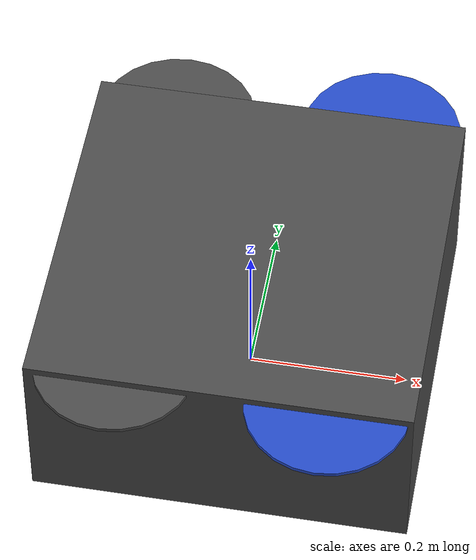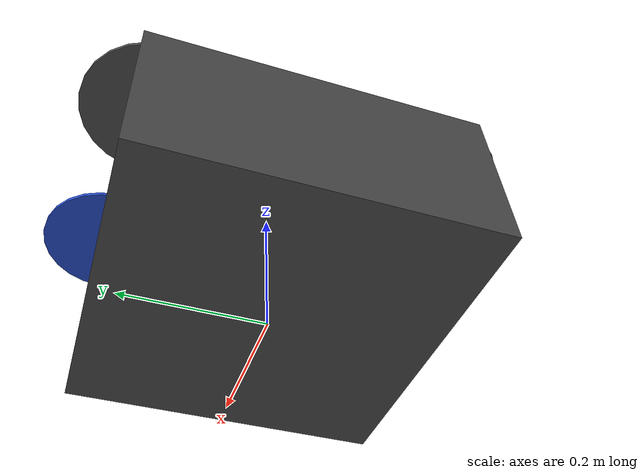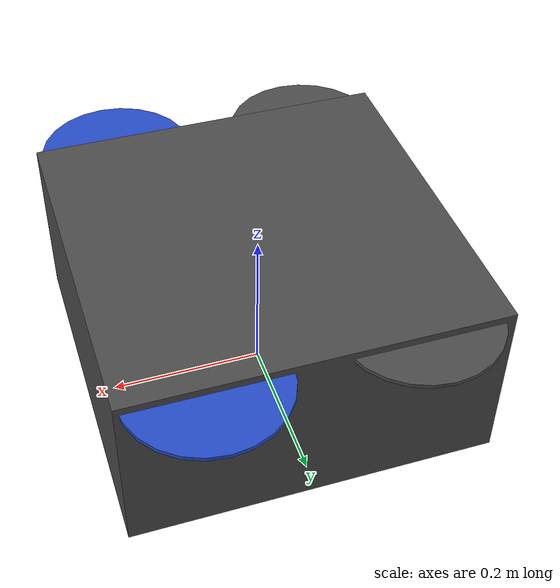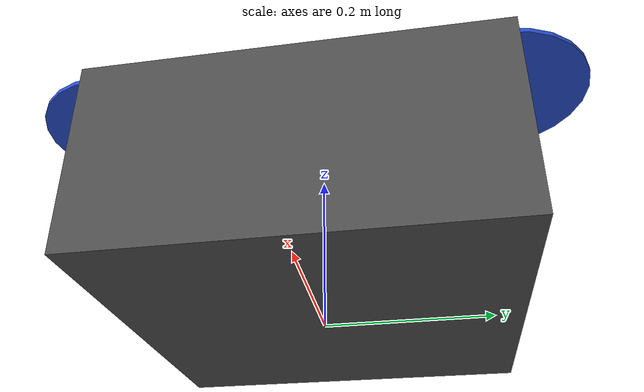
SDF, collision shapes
<?xml version='1.0'?>
<sdf version="1.9">

  <model name="iris_with_lidar">
    <include merge="true">
      <uri>model://iris_with_standoffs</uri>
    </include>

    <plugin filename="gz-sim-joint-state-publisher-system"
      name="gz::sim::systems::JointStatePublisher">
    </plugin>

    <plugin
      filename="gz-sim-odometry-publisher-system"
      name="gz::sim::systems::OdometryPublisher">
      <odom_frame>odom</odom_frame>
      <robot_base_frame>base_link</robot_base_frame>
      <dimensions>3</dimensions>
    </plugin>

    <plugin filename="gz-sim-lift-drag-system"
        name="gz::sim::systems::LiftDrag">
      <a0>0.3</a0>
      <alpha_stall>1.4</alpha_stall>
      <cla>4.2500</cla>
      <cda>0.10</cda>
      <cma>0.0</cma>
      <cla_stall>-0.025</cla_stall>
      <cda_stall>0.0</cda_stall>
      <cma_stall>0.0</cma_stall>
      <area>0.002</area>
      <air_density>1.2041</air_density>
      <cp>0.084 0 0</cp>
      <forward>0 1 0</forward>
      <upward>0 0 1</upward>
      <link_name>rotor_0</link_name>
    </plugin>
    <plugin filename="gz-sim-lift-drag-system"
        name="gz::sim::systems::LiftDrag">
      <a0>0.3</a0>
      <alpha_stall>1.4</alpha_stall>
      <cla>4.2500</cla>
      <cda>0.10</cda>
      <cma>0.0</cma>
      <cla_stall>-0.025</cla_stall>
      <cda_stall>0.0</cda_stall>
      <cma_stall>0.0</cma_stall>
      <area>0.002</area>
      <air_density>1.2041</air_density>
      <cp>-0.084 0 0</cp>
      <forward>0 -1 0</forward>
      <upward>0 0 1</upward>
      <link_name>rotor_0</link_name>
    </plugin>

    <plugin filename="gz-sim-lift-drag-system"
        name="gz::sim::systems::LiftDrag">
      <a0>0.3</a0>
      <alpha_stall>1.4</alpha_stall>
      <cla>4.2500</cla>
      <cda>0.10</cda>
      <cma>0.0</cma>
      <cla_stall>-0.025</cla_stall>
      <cda_stall>0.0</cda_stall>
      <cma_stall>0.0</cma_stall>
      <area>0.002</area>
      <air_density>1.2041</air_density>
      <cp>0.084 0 0</cp>
      <forward>0 1 0</forward>
      <upward>0 0 1</upward>
      <link_name>rotor_1</link_name>
    </plugin>
    <plugin filename="gz-sim-lift-drag-system"
        name="gz::sim::systems::LiftDrag">
      <a0>0.3</a0>
      <alpha_stall>1.4</alpha_stall>
      <cla>4.2500</cla>
      <cda>0.10</cda>
      <cma>0.0</cma>
      <cla_stall>-0.025</cla_stall>
      <cda_stall>0.0</cda_stall>
      <cma_stall>0.0</cma_stall>
      <area>0.002</area>
      <air_density>1.2041</air_density>
      <cp>-0.084 0 0</cp>
      <forward>0 -1 0</forward>
      <upward>0 0 1</upward>
      <link_name>rotor_1</link_name>
    </plugin>

    <plugin filename="gz-sim-lift-drag-system"
        name="gz::sim::systems::LiftDrag">
      <a0>0.3</a0>
      <alpha_stall>1.4</alpha_stall>
      <cla>4.2500</cla>
      <cda>0.10</cda>
      <cma>0.0</cma>
      <cla_stall>-0.025</cla_stall>
      <cda_stall>0.0</cda_stall>
      <cma_stall>0.0</cma_stall>
      <area>0.002</area>
      <air_density>1.2041</air_density>
      <cp>0.084 0 0</cp>
      <forward>0 -1 0</forward>
      <upward>0 0 1</upward>
      <link_name>rotor_2</link_name>
    </plugin>
    <plugin filename="gz-sim-lift-drag-system"
        name="gz::sim::systems::LiftDrag">
      <a0>0.3</a0>
      <alpha_stall>1.4</alpha_stall>
      <cla>4.2500</cla>
      <cda>0.10</cda>
      <cma>0.0</cma>
      <cla_stall>-0.025</cla_stall>
      <cda_stall>0.0</cda_stall>
      <cma_stall>0.0</cma_stall>
      <area>0.002</area>
      <air_density>1.2041</air_density>
      <cp>-0.084 0 0</cp>
      <forward>0 1 0</forward>
      <upward>0 0 1</upward>
      <link_name>rotor_2</link_name>
    </plugin>

    <plugin filename="gz-sim-lift-drag-system"
        name="gz::sim::systems::LiftDrag">
      <a0>0.3</a0>
      <alpha_stall>1.4</alpha_stall>
      <cla>4.2500</cla>
      <cda>0.10</cda>
      <cma>0.0</cma>
      <cla_stall>-0.025</cla_stall>
      <cda_stall>0.0</cda_stall>
      <cma_stall>0.0</cma_stall>
      <area>0.002</area>
      <air_density>1.2041</air_density>
      <cp>0.084 0 0</cp>
      <forward>0 -1 0</forward>
      <upward>0 0 1</upward>
      <link_name>rotor_3</link_name>
    </plugin>
    <plugin filename="gz-sim-lift-drag-system"
        name="gz::sim::systems::LiftDrag">
      <a0>0.3</a0>
      <alpha_stall>1.4</alpha_stall>
      <cla>4.2500</cla>
      <cda>0.10</cda>
      <cma>0.0</cma>
      <cla_stall>-0.025</cla_stall>
      <cda_stall>0.0</cda_stall>
      <cma_stall>0.0</cma_stall>
      <area>0.002</area>
      <air_density>1.2041</air_density>
      <cp>-0.084 0 0</cp>
      <forward>0 1 0</forward>
      <upward>0 0 1</upward>
      <link_name>rotor_3</link_name>
    </plugin>

    <plugin filename="gz-sim-apply-joint-force-system"
      name="gz::sim::systems::ApplyJointForce">
      <joint_name>rotor_0_joint</joint_name>
    </plugin>
    <plugin filename="gz-sim-apply-joint-force-system"
      name="gz::sim::systems::ApplyJointForce">
      <joint_name>rotor_1_joint</joint_name>
    </plugin>
    <plugin filename="gz-sim-apply-joint-force-system"
      name="gz::sim::systems::ApplyJointForce">
      <joint_name>rotor_2_joint</joint_name>
    </plugin>
    <plugin filename="gz-sim-apply-joint-force-system"
      name="gz::sim::systems::ApplyJointForce">
      <joint_name>rotor_3_joint</joint_name>
    </plugin>

    <plugin filename="gz-sim-linearbatteryplugin-system"
      name="gz::sim::systems::LinearBatteryPlugin">
      <battery_name>lipo_3500mAh</battery_name>
      <fix_issue_225>true</fix_issue_225>
      <open_circuit_voltage_constant_coef>12.6</open_circuit_voltage_constant_coef>
      <open_circuit_voltage_linear_coef>-2.7</open_circuit_voltage_linear_coef>
      <capacity>3.5</capacity>
      <voltage>12.6</voltage>
      <initial_charge>3.5</initial_charge>
      <power_load>200.0</power_load>
      <start_draining>false</start_draining>
    </plugin>

    <plugin name="ArduPilotPlugin"
      filename="ArduPilotPlugin">
      <fdm_addr>127.0.0.1</fdm_addr>
      <fdm_port_in>9002</fdm_port_in>
      <connectionTimeoutMaxCount>5</connectionTimeoutMaxCount>
      <lock_step>1</lock_step>
      <modelXYZToAirplaneXForwardZDown degrees="true">0 0 0 180 0 0</modelXYZToAirplaneXForwardZDown>
      <gazeboXYZToNED degrees="true">0 0 0 180 0 90</gazeboXYZToNED>

      <!-- Sensors -->
      <imuName>imu_link::imu_sensor</imuName>

      <!-- Control channels -->
      <!--
          incoming control command [0, 1]
          so offset it by 0 to get [0, 1]
          and divide max target by 1.
          offset = 0
          multiplier = 838 max rpm / 1 = 838
        -->
      <control channel="0">
        <jointName>rotor_0_joint</jointName>
        <useForce>1</useForce>
        <multiplier>838</multiplier>
        <offset>0</offset>
        <servo_min>1100</servo_min>
        <servo_max>1900</servo_max>
        <type>VELOCITY</type>
        <p_gain>0.20</p_gain>
        <i_gain>0</i_gain>
        <d_gain>0</d_gain>
        <i_max>0</i_max>
        <i_min>0</i_min>
        <cmd_max>2.5</cmd_max>
        <cmd_min>-2.5</cmd_min>
        <controlVelocitySlowdownSim>1</controlVelocitySlowdownSim>
      </control>

      <control channel="1">
        <jointName>rotor_1_joint</jointName>
        <useForce>1</useForce>
        <multiplier>838</multiplier>
        <offset>0</offset>
        <servo_min>1100</servo_min>
        <servo_max>1900</servo_max>
        <type>VELOCITY</type>
        <p_gain>0.20</p_gain>
        <i_gain>0</i_gain>
        <d_gain>0</d_gain>
        <i_max>0</i_max>
        <i_min>0</i_min>
        <cmd_max>2.5</cmd_max>
        <cmd_min>-2.5</cmd_min>
        <controlVelocitySlowdownSim>1</controlVelocitySlowdownSim>
      </control>

      <control channel="2">
        <jointName>rotor_2_joint</jointName>
        <useForce>1</useForce>
        <multiplier>-838</multiplier>
        <offset>0</offset>
        <servo_min>1100</servo_min>
        <servo_max>1900</servo_max>
        <type>VELOCITY</type>
        <p_gain>0.20</p_gain>
        <i_gain>0</i_gain>
        <d_gain>0</d_gain>
        <i_max>0</i_max>
        <i_min>0</i_min>
        <cmd_max>2.5</cmd_max>
        <cmd_min>-2.5</cmd_min>
        <controlVelocitySlowdownSim>1</controlVelocitySlowdownSim>
      </control>

      <control channel="3">
        <jointName>rotor_3_joint</jointName>
        <useForce>1</useForce>
        <multiplier>-838</multiplier>
        <offset>0</offset>
        <servo_min>1100</servo_min>
        <servo_max>1900</servo_max>
        <type>VELOCITY</type>
        <p_gain>0.20</p_gain>
        <i_gain>0</i_gain>
        <d_gain>0</d_gain>
        <i_max>0</i_max>
        <i_min>0</i_min>
        <cmd_max>2.5</cmd_max>
        <cmd_min>-2.5</cmd_min>
        <controlVelocitySlowdownSim>1</controlVelocitySlowdownSim>
      </control>

    </plugin>

    <link name="base_scan">
      <pose>0 0 0.0375385 0 0 0</pose>
      <inertial>
        <pose>0 0 0.03560 0 0 0</pose>
        <mass>0.2</mass>
        <inertia>
          <ixx>0.0007133154508187585</ixx>
          <ixy>0</ixy>
          <ixz>0</ixz>
          <iyy>0.0007133154508187585</iyy>
          <iyz>0</iyz>
          <izz>0.0007251247226596059</izz>
        </inertia>
      </inertial>
      <collision name="collision">
        <pose>0 0 0.03560593 0 0 0</pose>
        <geometry>
          <cylinder>
            <radius>0.04180058</radius>
            <length>0.07121186</length>
          </cylinder>
        </geometry>
      </collision>
      <visual name="visual">
        <geometry>
          <mesh>
            <uri>model://iris_with_lidar/meshes/lidar_3d_v2.dae</uri>
            <scale>0.5 0.5 0.5</scale>
          </mesh>
        </geometry>
      </visual>

      <sensor name="gps" type="gps">
        <always_on>true</always_on>
        <update_rate>10</update_rate>
        <topic>/gps</topic>
        <gps>
          <position_sensing>
            <horizontal>
              <noise type="gaussian">
                <mean>0.0</mean>
                <stddev>0.1</stddev>
              </noise>
            </horizontal>
            <vertical>
              <noise type="gaussian">
                <mean>0.0</mean>
                <stddev>0.5</stddev>
              </noise>
            </vertical>
          </position_sensing>
        </gps>
      </sensor>

      <sensor name='lidar' type='gpu_lidar'>
        <gz_frame_id>base_scan</gz_frame_id>
        <pose>0 0 0 0 0 0</pose>
        <topic>lidar</topic>
        <update_rate>30</update_rate>
        <lidar>
          <scan>
            <horizontal>
              <samples>2800</samples>
              <resolution>1</resolution>
              <min_angle>-3.14159265</min_angle>
              <max_angle>3.14159265</max_angle>
            </horizontal>
            <vertical>
              <samples>1</samples>
              <resolution>1</resolution>
              <min_angle>0.0</min_angle>
              <max_angle>0.0</max_angle>
            </vertical>
          </scan>
          <range>
            <min>0.08</min>
            <max>30.0</max>
            <resolution>0.01</resolution>
          </range>
          <gz_frame_id>base_scan</gz_frame_id>
        </lidar>
        <visualize>true</visualize>
      </sensor>
    </link>

    <joint name="lidar_joint" type="revolute">
      <parent>base_link</parent>
      <child>base_scan</child>
      <axis>
        <xyz>0 0 1</xyz>
        <limit>
          <lower>0</lower>
          <upper>0</upper>
        </limit>
        <dynamics>
          <damping>1</damping>
        </dynamics>
      </axis>
    </joint>

    <include merge='true'>
      <uri>model://mono_cam</uri>
      <pose>.12 .03 .242 0 0 -3.14</pose>
    </include>
    <joint name="CameraJoint" type="fixed">
      <parent>base_link</parent>
      <child>mono_cam/base_link</child>
      <pose relative_to="base_link">.12 .03 .242 0 0 -3.14</pose>
    </joint>

    <plugin
      filename="gz-sim-odometry-publisher-system"
      name="gz::sim::systems::OdometryPublisher">
      <dimensions>3</dimensions>
    </plugin>

  </model>

</sdf>

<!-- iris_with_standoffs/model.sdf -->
<sdf version='1.6'>
  <model name='iris'>
    <pose>0 0 0.194923 0 0 0</pose>
    <link name='base_link'>
      <velocity_decay>
        <linear>0.0</linear>
        <angular>0.0</angular>
      </velocity_decay>
      <inertial>
        <pose>0 0 0 0 0 0</pose>
        <mass>1.5</mass>
        <inertia>
          <ixx>0.008</ixx>
          <ixy>0</ixy>
          <ixz>0</ixz>
          <iyy>0.015</iyy>
          <iyz>0</iyz>
          <izz>0.017</izz>
        </inertia>
      </inertial>
      <collision name='base_link_collision'>
        <pose>0 0 -0.08 0 0 0</pose>
        <geometry>
          <box>
            <size>0.47 0.47 0.23</size>
          </box>
        </geometry>
        <surface>
          <contact>
            <ode>
              <max_vel>100.0</max_vel>
              <min_depth>0.001</min_depth>
            </ode>
          </contact>
          <friction>
            <ode>
              <mu>1.0</mu>
              <mu2>1.0</mu2>
            </ode>
          </friction>
        </surface>
      </collision>
      <visual name='base_link_visual'>
        <geometry>
          <mesh>
            <uri>model://../model_source/models/iris_with_standoffs/meshes/iris.dae</uri>
          </mesh>
        </geometry>
        <material>
          <script>
            <name>Gazebo/DarkGrey</name>
          </script>
        </material>
      </visual>

      <visual name='front_left_leg_visual'>
        <pose>0.123 0.22 -0.11 0 0 0</pose>
        <geometry>
          <cylinder>
            <radius>0.005</radius>
            <length>0.17</length>
          </cylinder>
        </geometry>
        <material>
          <script>
            <name>Gazebo/FlatBlack</name>
            <uri>file://media/materials/scripts/gazebo.material</uri>
          </script>
        </material>
      </visual>
      <visual name='front_right_leg_visual'>
        <pose>0.123 -0.22 -0.11 0 0 0</pose>
        <geometry>
          <cylinder>
            <radius>0.005</radius>
            <length>0.17</length>
          </cylinder>
        </geometry>
        <material>
          <script>
            <name>Gazebo/FlatBlack</name>
            <uri>file://media/materials/scripts/gazebo.material</uri>
          </script>
        </material>
      </visual>
      <visual name='rear_left_leg_visual'>
        <pose>-0.140 0.21 -0.11 0 0 0</pose>
        <geometry>
          <cylinder>
            <radius>0.005</radius>
            <length>0.17</length>
          </cylinder>
        </geometry>
        <material>
          <script>
            <name>Gazebo/FlatBlack</name>
            <uri>file://media/materials/scripts/gazebo.material</uri>
          </script>
        </material>
      </visual>
      <visual name='rear_right_leg_visual'>
        <pose>-0.140 -0.21 -0.11 0 0 0</pose>
        <geometry>
          <cylinder>
            <radius>0.005</radius>
            <length>0.17</length>
          </cylinder>
        </geometry>
        <material>
          <script>
            <name>Gazebo/FlatBlack</name>
            <uri>file://media/materials/scripts/gazebo.material</uri>
          </script>
        </material>
      </visual>
    </link>
    <link name='iris/ground_truth/odometry_sensorgt_link'>
      <pose>0 0 0 0 -0 0</pose>
      <inertial>
        <pose>0 0 0 0 -0 0</pose>
        <mass>0.15</mass>
        <inertia>
          <ixx>0.0001</ixx>
          <ixy>0</ixy>
          <ixz>0</ixz>
          <iyy>0.0002</iyy>
          <iyz>0</iyz>
          <izz>0.0002</izz>
        </inertia>
      </inertial>
    </link>
    <joint name='iris/ground_truth/odometry_sensorgt_joint' type='revolute'>
      <child>iris/ground_truth/odometry_sensorgt_link</child>
      <parent>base_link</parent>
      <axis>
        <xyz>0 0 1</xyz>
        <limit>
          <lower>0</lower>
          <upper>0</upper>
          <effort>0</effort>
          <velocity>0</velocity>
        </limit>
        <dynamics>
          <damping>1.0</damping>
        </dynamics>
        <use_parent_model_frame>1</use_parent_model_frame>
      </axis>
      <physics>
        <ode>
          <implicit_spring_damper>1</implicit_spring_damper>
        </ode>
      </physics>
    </joint>
    <link name='iris/imu_link'>
      <inertial>
        <pose>0 0 0 0 0 0</pose>
        <mass>0.15</mass>
        <inertia>
          <ixx>0.00001</ixx>
          <ixy>0</ixy>
          <ixz>0</ixz>
          <iyy>0.00002</iyy>
          <iyz>0</iyz>
          <izz>0.00002</izz>
        </inertia>
      </inertial>
      <sensor name="imu_sensor" type="imu">
        <pose>0 0 0 3.141593 0 0</pose>
        <always_on>1</always_on>
        <update_rate>1000.0</update_rate>
      </sensor>
    </link>
    <joint name='iris/imu_joint' type='revolute'>
      <child>iris/imu_link</child>
      <parent>base_link</parent>
      <axis>
        <xyz>0 0 1</xyz>
        <limit>
          <lower>0</lower>
          <upper>0</upper>
          <effort>0</effort>
          <velocity>0</velocity>
        </limit>
        <dynamics>
          <damping>1.0</damping>
        </dynamics>
        <use_parent_model_frame>1</use_parent_model_frame>
      </axis>
      <physics>
        <ode>
          <implicit_spring_damper>1</implicit_spring_damper>
        </ode>
      </physics>
    </joint>
    <link name='rotor_0'>
      <pose>0.13 -0.22 0.023 0 -0 0</pose>
      <inertial>
        <pose>0 0 0 0 -0 0</pose>
        <mass>0.025</mass>
        <inertia>
          <ixx>9.75e-06</ixx>
          <ixy>0</ixy>
          <ixz>0</ixz>
          <iyy>0.000166704</iyy>
          <iyz>0</iyz>
          <izz>0.000167604</izz>
        </inertia>
      </inertial>
      <collision name='rotor_0_collision'>
        <pose>0 0 0 0 -0 0</pose>
        <geometry>
          <cylinder>
            <length>0.005</length>
            <radius>0.1</radius>
          </cylinder>
        </geometry>
        <surface>
          <contact>
            <ode/>
          </contact>
          <friction>
            <ode/>
          </friction>
        </surface>
      </collision>
      <visual name='rotor_0_visual'>
        <pose>0 0 0 0 -0 0</pose>
        <geometry>
          <mesh>
            <scale>1 1 1</scale>
            <uri>model://../model_source/models/iris_with_standoffs/meshes/iris_prop_ccw.dae</uri>
          </mesh>
        </geometry>
        <material>
          <script>
            <name>Gazebo/Blue</name>
            <uri>__default__</uri>
          </script>
        </material>
      </visual>
      <gravity>1</gravity>
      <velocity_decay/>
      <self_collide>0</self_collide>
    </link>
    <joint name='rotor_0_joint' type='revolute'>
      <child>rotor_0</child>
      <parent>base_link</parent>
      <axis>
        <xyz>0 0 1</xyz>
        <limit>
          <lower>-1e+16</lower>
          <upper>1e+16</upper>
        </limit>
        <dynamics>
          <damping>0.004</damping>
        </dynamics>
        <use_parent_model_frame>1</use_parent_model_frame>
      </axis>
      <physics>
        <ode>
          <implicit_spring_damper>1</implicit_spring_damper>
        </ode>
      </physics>
    </joint>
    <link name='rotor_1'>
      <pose>-0.13 0.2 0.023 0 -0 0</pose>
      <inertial>
        <pose>0 0 0 0 -0 0</pose>
        <mass>0.025</mass>
        <inertia>
          <ixx>9.75e-06</ixx>
          <ixy>0</ixy>
          <ixz>0</ixz>
          <iyy>0.000166704</iyy>
          <iyz>0</iyz>
          <izz>0.000167604</izz>
        </inertia>
      </inertial>
      <collision name='rotor_1_collision'>
        <pose>0 0 0 0 -0 0</pose>
        <geometry>
          <cylinder>
            <length>0.005</length>
            <radius>0.1</radius>
          </cylinder>
        </geometry>
        <surface>
          <contact>
            <ode/>
          </contact>
          <friction>
            <ode/>
          </friction>
        </surface>
      </collision>
      <visual name='rotor_1_visual'>
        <pose>0 0 0 0 -0 0</pose>
        <geometry>
          <mesh>
            <scale>1 1 1</scale>
            <uri>model://../model_source/models/iris_with_standoffs/meshes/iris_prop_ccw.dae</uri>
          </mesh>
        </geometry>
        <material>
          <script>
            <name>Gazebo/DarkGrey</name>
            <uri>__default__</uri>
          </script>
        </material>
      </visual>
      <gravity>1</gravity>
      <velocity_decay/>
      <self_collide>0</self_collide>
    </link>
    <joint name='rotor_1_joint' type='revolute'>
      <child>rotor_1</child>
      <parent>base_link</parent>
      <axis>
        <xyz>0 0 1</xyz>
        <limit>
          <lower>-1e+16</lower>
          <upper>1e+16</upper>
        </limit>
        <dynamics>
          <damping>0.004</damping>
        </dynamics>
        <use_parent_model_frame>1</use_parent_model_frame>
      </axis>
      <physics>
        <ode>
          <implicit_spring_damper>1</implicit_spring_damper>
        </ode>
      </physics>
    </joint>
    <link name='rotor_2'>
      <pose>0.13 0.22 0.023 0 -0 0</pose>
      <inertial>
        <pose>0 0 0 0 -0 0</pose>
        <mass>0.025</mass>
        <inertia>
          <ixx>9.75e-06</ixx>
          <ixy>0</ixy>
          <ixz>0</ixz>
          <iyy>0.000166704</iyy>
          <iyz>0</iyz>
          <izz>0.000167604</izz>
        </inertia>
      </inertial>
      <collision name='rotor_2_collision'>
        <pose>0 0 0 0 -0 0</pose>
        <geometry>
          <cylinder>
            <length>0.005</length>
            <radius>0.1</radius>
          </cylinder>
        </geometry>
        <surface>
          <contact>
            <ode/>
          </contact>
          <friction>
            <ode/>
          </friction>
        </surface>
      </collision>
      <visual name='rotor_2_visual'>
        <pose>0 0 0 0 -0 0</pose>
        <geometry>
          <mesh>
            <scale>1 1 1</scale>
            <uri>model://../model_source/models/iris_with_standoffs/meshes/iris_prop_cw.dae</uri>
          </mesh>
        </geometry>
        <material>
          <script>
            <name>Gazebo/Blue</name>
            <uri>__default__</uri>
          </script>
        </material>
      </visual>
      <gravity>1</gravity>
      <velocity_decay/>
      <self_collide>0</self_collide>
    </link>
    <joint name='rotor_2_joint' type='revolute'>
      <child>rotor_2</child>
      <parent>base_link</parent>
      <axis>
        <xyz>0 0 1</xyz>
        <limit>
          <lower>-1e+16</lower>
          <upper>1e+16</upper>
        </limit>
        <dynamics>
          <damping>0.004</damping>
        </dynamics>
        <use_parent_model_frame>1</use_parent_model_frame>
      </axis>
      <physics>
        <ode>
          <implicit_spring_damper>1</implicit_spring_damper>
        </ode>
      </physics>
    </joint>
    <link name='rotor_3'>
      <pose>-0.13 -0.2 0.023 0 -0 0</pose>
      <inertial>
        <pose>0 0 0 0 -0 0</pose>
        <mass>0.025</mass>
        <inertia>
          <ixx>9.75e-06</ixx>
          <ixy>0</ixy>
          <ixz>0</ixz>
          <iyy>0.000166704</iyy>
          <iyz>0</iyz>
          <izz>0.000167604</izz>
        </inertia>
      </inertial>
      <collision name='rotor_3_collision'>
        <pose>0 0 0 0 -0 0</pose>
        <geometry>
          <cylinder>
            <length>0.005</length>
            <radius>0.1</radius>
          </cylinder>
        </geometry>
        <surface>
          <contact>
            <ode/>
          </contact>
          <friction>
            <ode/>
          </friction>
        </surface>
      </collision>
      <visual name='rotor_3_visual'>
        <pose>0 0 0 0 -0 0</pose>
        <geometry>
          <mesh>
            <scale>1 1 1</scale>
            <uri>model://../model_source/models/iris_with_standoffs/meshes/iris_prop_cw.dae</uri>
          </mesh>
        </geometry>
        <material>
          <script>
            <name>Gazebo/DarkGrey</name>
            <uri>__default__</uri>
          </script>
        </material>
      </visual>
      <gravity>1</gravity>
      <velocity_decay/>
      <self_collide>0</self_collide>
    </link>
    <joint name='rotor_3_joint' type='revolute'>
      <child>rotor_3</child>
      <parent>base_link</parent>
      <axis>
        <xyz>0 0 1</xyz>
        <limit>
          <lower>-1e+16</lower>
          <upper>1e+16</upper>
        </limit>
        <dynamics>
          <damping>0.004</damping>
        </dynamics>
        <use_parent_model_frame>1</use_parent_model_frame>
      </axis>
      <physics>
        <ode>
          <implicit_spring_damper>1</implicit_spring_damper>
        </ode>
      </physics>
    </joint>
    <static>0</static>
  </model>
</sdf>

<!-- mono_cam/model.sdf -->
<sdf version='1.9'>
  <model name='mono_cam'>
    <pose>0 0 0 0 0 0</pose>
    <self_collide>false</self_collide>
    <static>false</static>
    <link name="mono_cam/base_link">
      <inertial>
        <pose>0.03 0.03 0.03 0 0 0</pose>
        <mass>0.050</mass>
        <inertia>
          <ixx>0.00004</ixx>
          <ixy>0</ixy>
          <ixz>0</ixz>
          <iyy>0.00004</iyy>
          <iyz>0</iyz>
          <izz>0.00004</izz>
        </inertia>
      </inertial>
      <sensor name="imager" type="camera">
        <pose>0 0 0 0 0 0</pose>
        <camera>
          <horizontal_fov>1.74</horizontal_fov>
          <image>
            <width>1280</width>
            <height>720</height>
          </image>
          <clip>
            <near>0.1</near>
            <far>3000</far>
          </clip>
        </camera>
        <always_on>1</always_on>
        <update_rate>30</update_rate>
        <visualize>true</visualize>
      </sensor>
      <gravity>true</gravity>
      <velocity_decay/>
    </link>
  </model>
</sdf>
